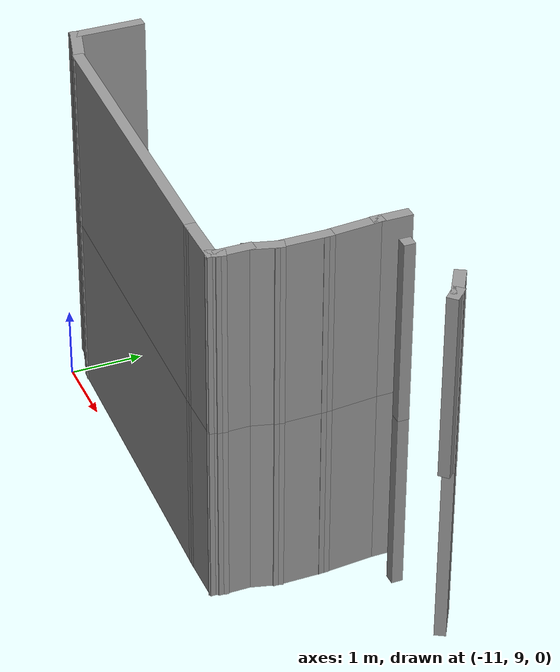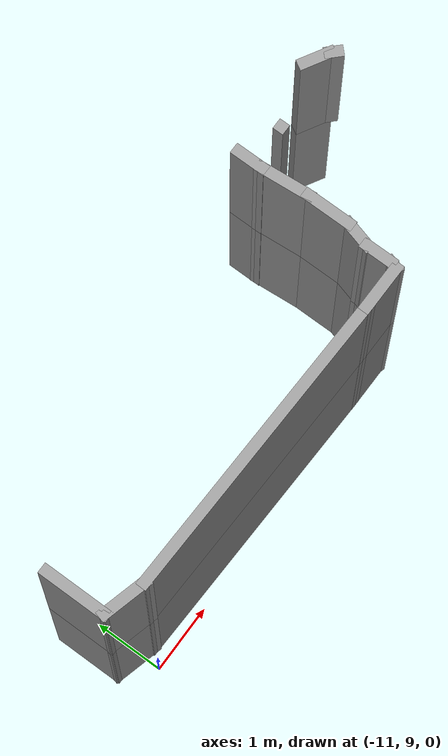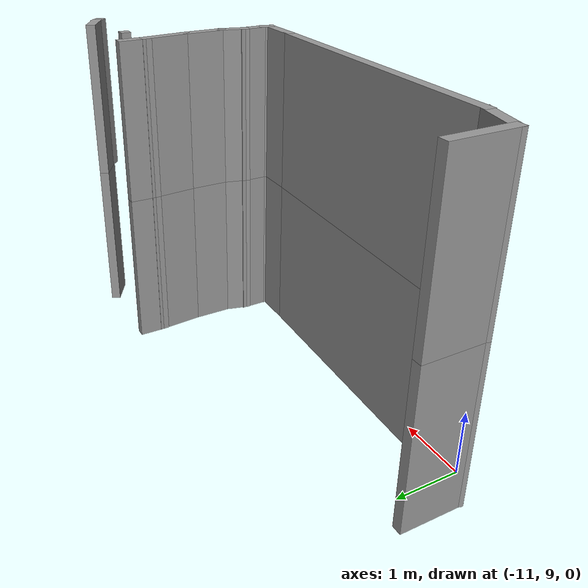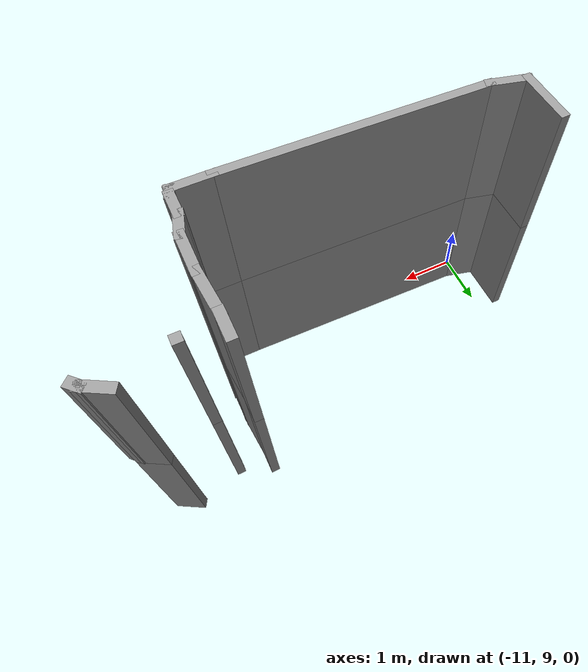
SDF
<sdf version="1.7">
 <model name="EnvDC01">
  <link name="Wall_100">
   <pose>-5.32892 11.2593 0 0 -0 0</pose>
   <visual name="Wall_100_Visual">
    <pose>0 0 1.25 0 -0 0</pose>
    <geometry><box><size>0.15 0.15 2.5</size></box></geometry>
    <material>
     <script><uri>file://media/materials/scripts/gazebo.material</uri><name>Gazebo/Grey</name></script>
     <ambient>1 1 1 1</ambient>
     <shader type="pixel"/>
    </material>
    <meta><layer>0</layer></meta>
   </visual>
   <collision name="Wall_100_Collision">
    <pose>0 0 1.25 0 -0 0</pose>
    <geometry><box><size>0.15 0.15 2.5</size></box></geometry>
    <surface>
     <friction>
      <ode><mu>1</mu><mu2>1</mu2><fdir1>0 0 0</fdir1><slip1>0</slip1><slip2>0</slip2></ode>
      <torsional>
       <coefficient>1</coefficient>
       <patch_radius>0</patch_radius>
       <surface_radius>0</surface_radius>
       <use_patch_radius>1</use_patch_radius>
       <ode><slip>0</slip></ode>
      </torsional>
     </friction>
     <bounce><restitution_coefficient>0</restitution_coefficient><threshold>1e+06</threshold></bounce>
     <contact>
      <collide_without_contact>0</collide_without_contact>
      <collide_without_contact_bitmask>1</collide_without_contact_bitmask>
      <collide_bitmask>1</collide_bitmask>
      <ode>
       <soft_cfm>0</soft_cfm>
       <soft_erp>0.2</soft_erp>
       <kp>1e+13</kp>
       <kd>1</kd>
       <max_vel>0.01</max_vel>
       <min_depth>0</min_depth>
      </ode>
      <bullet>
       <split_impulse>1</split_impulse>
       <split_impulse_penetration_threshold>-0.01</split_impulse_penetration_threshold>
       <soft_cfm>0</soft_cfm>
       <soft_erp>0.2</soft_erp>
       <kp>1e+13</kp>
       <kd>1</kd>
      </bullet>
     </contact>
    </surface>
   </collision>
  </link>
  <link name="Wall_102">
   <pose>-5.88941 11.3173 0 0 0 -1.5708</pose>
   <visual name="Wall_102_Visual">
    <pose>0 0 1.25 0 -0 0</pose>
    <geometry><box><size>0.5 0.15 2.5</size></box></geometry>
    <material>
     <script><uri>file://media/materials/scripts/gazebo.material</uri><name>Gazebo/Grey</name></script>
     <ambient>1 1 1 1</ambient>
     <shader type="pixel"/>
    </material>
    <meta><layer>0</layer></meta>
   </visual>
   <collision name="Wall_102_Collision">
    <pose>0 0 1.25 0 -0 0</pose>
    <geometry><box><size>0.5 0.15 2.5</size></box></geometry>
    <surface>
     <friction>
      <ode><mu>1</mu><mu2>1</mu2><fdir1>0 0 0</fdir1><slip1>0</slip1><slip2>0</slip2></ode>
      <torsional>
       <coefficient>1</coefficient>
       <patch_radius>0</patch_radius>
       <surface_radius>0</surface_radius>
       <use_patch_radius>1</use_patch_radius>
       <ode><slip>0</slip></ode>
      </torsional>
     </friction>
     <bounce><restitution_coefficient>0</restitution_coefficient><threshold>1e+06</threshold></bounce>
     <contact>
      <collide_without_contact>0</collide_without_contact>
      <collide_without_contact_bitmask>1</collide_without_contact_bitmask>
      <collide_bitmask>1</collide_bitmask>
      <ode>
       <soft_cfm>0</soft_cfm>
       <soft_erp>0.2</soft_erp>
       <kp>1e+13</kp>
       <kd>1</kd>
       <max_vel>0.01</max_vel>
       <min_depth>0</min_depth>
      </ode>
      <bullet>
       <split_impulse>1</split_impulse>
       <split_impulse_penetration_threshold>-0.01</split_impulse_penetration_threshold>
       <soft_cfm>0</soft_cfm>
       <soft_erp>0.2</soft_erp>
       <kp>1e+13</kp>
       <kd>1</kd>
      </bullet>
     </contact>
    </surface>
   </collision>
  </link>
  <link name="Wall_103">
   <pose>-5.86023 10.8116 0 0 0 -1.48755</pose>
   <visual name="Wall_103_Visual">
    <pose>0 0 1.25 0 -0 0</pose>
    <geometry><box><size>0.813803 0.15 2.5</size></box></geometry>
    <material>
     <script><uri>file://media/materials/scripts/gazebo.material</uri><name>Gazebo/Grey</name></script>
     <ambient>1 1 1 1</ambient>
     <shader type="pixel"/>
    </material>
    <meta><layer>0</layer></meta>
   </visual>
   <collision name="Wall_103_Collision">
    <pose>0 0 1.25 0 -0 0</pose>
    <geometry><box><size>0.813803 0.15 2.5</size></box></geometry>
    <surface>
     <friction>
      <ode><mu>1</mu><mu2>1</mu2><fdir1>0 0 0</fdir1><slip1>0</slip1><slip2>0</slip2></ode>
      <torsional>
       <coefficient>1</coefficient>
       <patch_radius>0</patch_radius>
       <surface_radius>0</surface_radius>
       <use_patch_radius>1</use_patch_radius>
       <ode><slip>0</slip></ode>
      </torsional>
     </friction>
     <bounce><restitution_coefficient>0</restitution_coefficient><threshold>1e+06</threshold></bounce>
     <contact>
      <collide_without_contact>0</collide_without_contact>
      <collide_without_contact_bitmask>1</collide_without_contact_bitmask>
      <collide_bitmask>1</collide_bitmask>
      <ode>
       <soft_cfm>0</soft_cfm>
       <soft_erp>0.2</soft_erp>
       <kp>1e+13</kp>
       <kd>1</kd>
       <max_vel>0.01</max_vel>
       <min_depth>0</min_depth>
      </ode>
      <bullet>
       <split_impulse>1</split_impulse>
       <split_impulse_penetration_threshold>-0.01</split_impulse_penetration_threshold>
       <soft_cfm>0</soft_cfm>
       <soft_erp>0.2</soft_erp>
       <kp>1e+13</kp>
       <kd>1</kd>
      </bullet>
     </contact>
    </surface>
   </collision>
  </link>
  <link name="Wall_104">
   <pose>-5.83264 10.1793 0 0 0 -1.5708</pose>
   <visual name="Wall_104_Visual">
    <pose>0 0 1.25 0 -0 0</pose>
    <geometry><box><size>0.75 0.15 2.5</size></box></geometry>
    <material>
     <script><uri>file://media/materials/scripts/gazebo.material</uri><name>Gazebo/Grey</name></script>
     <ambient>1 1 1 1</ambient>
     <shader type="pixel"/>
    </material>
    <meta><layer>0</layer></meta>
   </visual>
   <collision name="Wall_104_Collision">
    <pose>0 0 1.25 0 -0 0</pose>
    <geometry><box><size>0.75 0.15 2.5</size></box></geometry>
    <surface>
     <friction>
      <ode><mu>1</mu><mu2>1</mu2><fdir1>0 0 0</fdir1><slip1>0</slip1><slip2>0</slip2></ode>
      <torsional>
       <coefficient>1</coefficient>
       <patch_radius>0</patch_radius>
       <surface_radius>0</surface_radius>
       <use_patch_radius>1</use_patch_radius>
       <ode><slip>0</slip></ode>
      </torsional>
     </friction>
     <bounce><restitution_coefficient>0</restitution_coefficient><threshold>1e+06</threshold></bounce>
     <contact>
      <collide_without_contact>0</collide_without_contact>
      <collide_without_contact_bitmask>1</collide_without_contact_bitmask>
      <collide_bitmask>1</collide_bitmask>
      <ode>
       <soft_cfm>0</soft_cfm>
       <soft_erp>0.2</soft_erp>
       <kp>1e+13</kp>
       <kd>1</kd>
       <max_vel>0.01</max_vel>
       <min_depth>0</min_depth>
      </ode>
      <bullet>
       <split_impulse>1</split_impulse>
       <split_impulse_penetration_threshold>-0.01</split_impulse_penetration_threshold>
       <soft_cfm>0</soft_cfm>
       <soft_erp>0.2</soft_erp>
       <kp>1e+13</kp>
       <kd>1</kd>
      </bullet>
     </contact>
    </surface>
   </collision>
  </link>
  <link name="Wall_105">
   <pose>-5.87793 9.70942 0 0 0 -1.83143</pose>
   <visual name="Wall_105_Visual">
    <pose>0 0 1.25 0 -0 0</pose>
    <geometry><box><size>0.501524 0.15 2.5</size></box></geometry>
    <material>
     <script><uri>file://media/materials/scripts/gazebo.material</uri><name>Gazebo/Grey</name></script>
     <ambient>1 1 1 1</ambient>
     <shader type="pixel"/>
    </material>
    <meta><layer>0</layer></meta>
   </visual>
   <collision name="Wall_105_Collision">
    <pose>0 0 1.25 0 -0 0</pose>
    <geometry><box><size>0.501524 0.15 2.5</size></box></geometry>
    <surface>
     <friction>
      <ode><mu>1</mu><mu2>1</mu2><fdir1>0 0 0</fdir1><slip1>0</slip1><slip2>0</slip2></ode>
      <torsional>
       <coefficient>1</coefficient>
       <patch_radius>0</patch_radius>
       <surface_radius>0</surface_radius>
       <use_patch_radius>1</use_patch_radius>
       <ode><slip>0</slip></ode>
      </torsional>
     </friction>
     <bounce><restitution_coefficient>0</restitution_coefficient><threshold>1e+06</threshold></bounce>
     <contact>
      <collide_without_contact>0</collide_without_contact>
      <collide_without_contact_bitmask>1</collide_without_contact_bitmask>
      <collide_bitmask>1</collide_bitmask>
      <ode>
       <soft_cfm>0</soft_cfm>
       <soft_erp>0.2</soft_erp>
       <kp>1e+13</kp>
       <kd>1</kd>
       <max_vel>0.01</max_vel>
       <min_depth>0</min_depth>
      </ode>
      <bullet>
       <split_impulse>1</split_impulse>
       <split_impulse_penetration_threshold>-0.01</split_impulse_penetration_threshold>
       <soft_cfm>0</soft_cfm>
       <soft_erp>0.2</soft_erp>
       <kp>1e+13</kp>
       <kd>1</kd>
      </bullet>
     </contact>
    </surface>
   </collision>
  </link>
  <link name="Wall_106">
   <pose>-5.92322 9.3646 0 0 0 -1.5708</pose>
   <visual name="Wall_106_Visual">
    <pose>0 0 1.25 0 -0 0</pose>
    <geometry><box><size>0.5 0.15 2.5</size></box></geometry>
    <material>
     <script><uri>file://media/materials/scripts/gazebo.material</uri><name>Gazebo/Grey</name></script>
     <ambient>1 1 1 1</ambient>
     <shader type="pixel"/>
    </material>
    <meta><layer>0</layer></meta>
   </visual>
   <collision name="Wall_106_Collision">
    <pose>0 0 1.25 0 -0 0</pose>
    <geometry><box><size>0.5 0.15 2.5</size></box></geometry>
    <surface>
     <friction>
      <ode><mu>1</mu><mu2>1</mu2><fdir1>0 0 0</fdir1><slip1>0</slip1><slip2>0</slip2></ode>
      <torsional>
       <coefficient>1</coefficient>
       <patch_radius>0</patch_radius>
       <surface_radius>0</surface_radius>
       <use_patch_radius>1</use_patch_radius>
       <ode><slip>0</slip></ode>
      </torsional>
     </friction>
     <bounce><restitution_coefficient>0</restitution_coefficient><threshold>1e+06</threshold></bounce>
     <contact>
      <collide_without_contact>0</collide_without_contact>
      <collide_without_contact_bitmask>1</collide_without_contact_bitmask>
      <collide_bitmask>1</collide_bitmask>
      <ode>
       <soft_cfm>0</soft_cfm>
       <soft_erp>0.2</soft_erp>
       <kp>1e+13</kp>
       <kd>1</kd>
       <max_vel>0.01</max_vel>
       <min_depth>0</min_depth>
      </ode>
      <bullet>
       <split_impulse>1</split_impulse>
       <split_impulse_penetration_threshold>-0.01</split_impulse_penetration_threshold>
       <soft_cfm>0</soft_cfm>
       <soft_erp>0.2</soft_erp>
       <kp>1e+13</kp>
       <kd>1</kd>
      </bullet>
     </contact>
    </surface>
   </collision>
  </link>
  <link name="Wall_107">
   <pose>-5.93616 9.1413 0 0 0 -1.8326</pose>
   <visual name="Wall_107_Visual">
    <pose>0 0 1.25 0 -0 0</pose>
    <geometry><box><size>0.25 0.15 2.5</size></box></geometry>
    <material>
     <script><uri>file://media/materials/scripts/gazebo.material</uri><name>Gazebo/Grey</name></script>
     <ambient>1 1 1 1</ambient>
     <shader type="pixel"/>
    </material>
    <meta><layer>0</layer></meta>
   </visual>
   <collision name="Wall_107_Collision">
    <pose>0 0 1.25 0 -0 0</pose>
    <geometry><box><size>0.25 0.15 2.5</size></box></geometry>
    <surface>
     <friction>
      <ode><mu>1</mu><mu2>1</mu2><fdir1>0 0 0</fdir1><slip1>0</slip1><slip2>0</slip2></ode>
      <torsional>
       <coefficient>1</coefficient>
       <patch_radius>0</patch_radius>
       <surface_radius>0</surface_radius>
       <use_patch_radius>1</use_patch_radius>
       <ode><slip>0</slip></ode>
      </torsional>
     </friction>
     <bounce><restitution_coefficient>0</restitution_coefficient><threshold>1e+06</threshold></bounce>
     <contact>
      <collide_without_contact>0</collide_without_contact>
      <collide_without_contact_bitmask>1</collide_without_contact_bitmask>
      <collide_bitmask>1</collide_bitmask>
      <ode>
       <soft_cfm>0</soft_cfm>
       <soft_erp>0.2</soft_erp>
       <kp>1e+13</kp>
       <kd>1</kd>
       <max_vel>0.01</max_vel>
       <min_depth>0</min_depth>
      </ode>
      <bullet>
       <split_impulse>1</split_impulse>
       <split_impulse_penetration_threshold>-0.01</split_impulse_penetration_threshold>
       <soft_cfm>0</soft_cfm>
       <soft_erp>0.2</soft_erp>
       <kp>1e+13</kp>
       <kd>1</kd>
      </bullet>
     </contact>
    </surface>
   </collision>
  </link>
  <link name="Wall_108">
   <pose>-6.24911 9.09509 0 0 -0 3.13464</pose>
   <visual name="Wall_108_Visual">
    <pose>0 0 1.25 0 -0 0</pose>
    <geometry><box><size>0.75 0.15 2.5</size></box></geometry>
    <material>
     <script><uri>file://media/materials/scripts/gazebo.material</uri><name>Gazebo/Grey</name></script>
     <ambient>1 1 1 1</ambient>
     <shader type="pixel"/>
    </material>
    <meta><layer>0</layer></meta>
   </visual>
   <collision name="Wall_108_Collision">
    <pose>0 0 1.25 0 -0 0</pose>
    <geometry><box><size>0.75 0.15 2.5</size></box></geometry>
    <surface>
     <friction>
      <ode><mu>1</mu><mu2>1</mu2><fdir1>0 0 0</fdir1><slip1>0</slip1><slip2>0</slip2></ode>
      <torsional>
       <coefficient>1</coefficient>
       <patch_radius>0</patch_radius>
       <surface_radius>0</surface_radius>
       <use_patch_radius>1</use_patch_radius>
       <ode><slip>0</slip></ode>
      </torsional>
     </friction>
     <bounce><restitution_coefficient>0</restitution_coefficient><threshold>1e+06</threshold></bounce>
     <contact>
      <collide_without_contact>0</collide_without_contact>
      <collide_without_contact_bitmask>1</collide_without_contact_bitmask>
      <collide_bitmask>1</collide_bitmask>
      <ode>
       <soft_cfm>0</soft_cfm>
       <soft_erp>0.2</soft_erp>
       <kp>1e+13</kp>
       <kd>1</kd>
       <max_vel>0.01</max_vel>
       <min_depth>0</min_depth>
      </ode>
      <bullet>
       <split_impulse>1</split_impulse>
       <split_impulse_penetration_threshold>-0.01</split_impulse_penetration_threshold>
       <soft_cfm>0</soft_cfm>
       <soft_erp>0.2</soft_erp>
       <kp>1e+13</kp>
       <kd>1</kd>
      </bullet>
     </contact>
    </surface>
   </collision>
  </link>
  <link name="Wall_111">
   <pose>-8.68398 9.16284 0 0 -0 3.11085</pose>
   <visual name="Wall_111_Visual">
    <pose>0 0 1.25 0 -0 0</pose>
    <geometry><box><size>4.42177 0.15 2.5</size></box></geometry>
    <material>
     <script><uri>file://media/materials/scripts/gazebo.material</uri><name>Gazebo/Grey</name></script>
     <ambient>1 1 1 1</ambient>
     <shader type="pixel"/>
    </material>
    <meta><layer>0</layer></meta>
   </visual>
   <collision name="Wall_111_Collision">
    <pose>0 0 1.25 0 -0 0</pose>
    <geometry><box><size>4.42177 0.15 2.5</size></box></geometry>
    <surface>
     <friction>
      <ode><mu>1</mu><mu2>1</mu2><fdir1>0 0 0</fdir1><slip1>0</slip1><slip2>0</slip2></ode>
      <torsional>
       <coefficient>1</coefficient>
       <patch_radius>0</patch_radius>
       <surface_radius>0</surface_radius>
       <use_patch_radius>1</use_patch_radius>
       <ode><slip>0</slip></ode>
      </torsional>
     </friction>
     <bounce><restitution_coefficient>0</restitution_coefficient><threshold>1e+06</threshold></bounce>
     <contact>
      <collide_without_contact>0</collide_without_contact>
      <collide_without_contact_bitmask>1</collide_without_contact_bitmask>
      <collide_bitmask>1</collide_bitmask>
      <ode>
       <soft_cfm>0</soft_cfm>
       <soft_erp>0.2</soft_erp>
       <kp>1e+13</kp>
       <kd>1</kd>
       <max_vel>0.01</max_vel>
       <min_depth>0</min_depth>
      </ode>
      <bullet>
       <split_impulse>1</split_impulse>
       <split_impulse_penetration_threshold>-0.01</split_impulse_penetration_threshold>
       <soft_cfm>0</soft_cfm>
       <soft_erp>0.2</soft_erp>
       <kp>1e+13</kp>
       <kd>1</kd>
      </bullet>
     </contact>
    </surface>
   </collision>
  </link>
  <link name="Wall_112">
   <pose>-11.1086 9.30614 0 0 -0 2.87979</pose>
   <visual name="Wall_112_Visual">
    <pose>0 0 1.25 0 -0 0</pose>
    <geometry><box><size>0.75 0.15 2.5</size></box></geometry>
    <material>
     <script><uri>file://media/materials/scripts/gazebo.material</uri><name>Gazebo/Grey</name></script>
     <ambient>1 1 1 1</ambient>
     <shader type="pixel"/>
    </material>
    <meta><layer>0</layer></meta>
   </visual>
   <collision name="Wall_112_Collision">
    <pose>0 0 1.25 0 -0 0</pose>
    <geometry><box><size>0.75 0.15 2.5</size></box></geometry>
    <surface>
     <friction>
      <ode><mu>1</mu><mu2>1</mu2><fdir1>0 0 0</fdir1><slip1>0</slip1><slip2>0</slip2></ode>
      <torsional>
       <coefficient>1</coefficient>
       <patch_radius>0</patch_radius>
       <surface_radius>0</surface_radius>
       <use_patch_radius>1</use_patch_radius>
       <ode><slip>0</slip></ode>
      </torsional>
     </friction>
     <bounce><restitution_coefficient>0</restitution_coefficient><threshold>1e+06</threshold></bounce>
     <contact>
      <collide_without_contact>0</collide_without_contact>
      <collide_without_contact_bitmask>1</collide_without_contact_bitmask>
      <collide_bitmask>1</collide_bitmask>
      <ode>
       <soft_cfm>0</soft_cfm>
       <soft_erp>0.2</soft_erp>
       <kp>1e+13</kp>
       <kd>1</kd>
       <max_vel>0.01</max_vel>
       <min_depth>0</min_depth>
      </ode>
      <bullet>
       <split_impulse>1</split_impulse>
       <split_impulse_penetration_threshold>-0.01</split_impulse_penetration_threshold>
       <soft_cfm>0</soft_cfm>
       <soft_erp>0.2</soft_erp>
       <kp>1e+13</kp>
       <kd>1</kd>
      </bullet>
     </contact>
    </surface>
   </collision>
  </link>
  <link name="Wall_116">
   <pose>-11.3984 9.80879 0 0 0 -1.5708</pose>
   <visual name="Wall_116_Visual">
    <pose>0 0 1.25 0 -0 0</pose>
    <geometry><box><size>1 0.15 2.5</size></box></geometry>
    <material>
     <script><uri>file://media/materials/scripts/gazebo.material</uri><name>Gazebo/Grey</name></script>
     <ambient>1 1 1 1</ambient>
     <shader type="pixel"/>
    </material>
    <meta><layer>0</layer></meta>
   </visual>
   <collision name="Wall_116_Collision">
    <pose>0 0 1.25 0 -0 0</pose>
    <geometry><box><size>1 0.15 2.5</size></box></geometry>
    <surface>
     <friction>
      <ode><mu>1</mu><mu2>1</mu2><fdir1>0 0 0</fdir1><slip1>0</slip1><slip2>0</slip2></ode>
      <torsional>
       <coefficient>1</coefficient>
       <patch_radius>0</patch_radius>
       <surface_radius>0</surface_radius>
       <use_patch_radius>1</use_patch_radius>
       <ode><slip>0</slip></ode>
      </torsional>
     </friction>
     <bounce><restitution_coefficient>0</restitution_coefficient><threshold>1e+06</threshold></bounce>
     <contact>
      <collide_without_contact>0</collide_without_contact>
      <collide_without_contact_bitmask>1</collide_without_contact_bitmask>
      <collide_bitmask>1</collide_bitmask>
      <ode>
       <soft_cfm>0</soft_cfm>
       <soft_erp>0.2</soft_erp>
       <kp>1e+13</kp>
       <kd>1</kd>
       <max_vel>0.01</max_vel>
       <min_depth>0</min_depth>
      </ode>
      <bullet>
       <split_impulse>1</split_impulse>
       <split_impulse_penetration_threshold>-0.01</split_impulse_penetration_threshold>
       <soft_cfm>0</soft_cfm>
       <soft_erp>0.2</soft_erp>
       <kp>1e+13</kp>
       <kd>1</kd>
      </bullet>
     </contact>
    </surface>
   </collision>
  </link>
  <link name="Wall_305">
   <pose>-4.16829 11.3139 2.5 0 -0 2.35619</pose>
   <visual name="Wall_305_Visual">
    <pose>0 0 1.25 0 -0 0</pose>
    <geometry><box><size>0.25 0.15 2.5</size></box></geometry>
    <material>
     <script><uri>file://media/materials/scripts/gazebo.material</uri><name>Gazebo/Grey</name></script>
     <ambient>1 1 1 1</ambient>
     <shader type="pixel"/>
    </material>
    <meta><layer>1</layer></meta>
   </visual>
   <collision name="Wall_305_Collision">
    <pose>0 0 1.25 0 -0 0</pose>
    <geometry><box><size>0.25 0.15 2.5</size></box></geometry>
    <surface>
     <friction>
      <ode><mu>1</mu><mu2>1</mu2><fdir1>0 0 0</fdir1><slip1>0</slip1><slip2>0</slip2></ode>
      <torsional>
       <coefficient>1</coefficient>
       <patch_radius>0</patch_radius>
       <surface_radius>0</surface_radius>
       <use_patch_radius>1</use_patch_radius>
       <ode><slip>0</slip></ode>
      </torsional>
     </friction>
     <bounce><restitution_coefficient>0</restitution_coefficient><threshold>1e+06</threshold></bounce>
     <contact>
      <collide_without_contact>0</collide_without_contact>
      <collide_without_contact_bitmask>1</collide_without_contact_bitmask>
      <collide_bitmask>1</collide_bitmask>
      <ode>
       <soft_cfm>0</soft_cfm>
       <soft_erp>0.2</soft_erp>
       <kp>1e+13</kp>
       <kd>1</kd>
       <max_vel>0.01</max_vel>
       <min_depth>0</min_depth>
      </ode>
      <bullet>
       <split_impulse>1</split_impulse>
       <split_impulse_penetration_threshold>-0.01</split_impulse_penetration_threshold>
       <soft_cfm>0</soft_cfm>
       <soft_erp>0.2</soft_erp>
       <kp>1e+13</kp>
       <kd>1</kd>
      </bullet>
     </contact>
    </surface>
   </collision>
  </link>
  <link name="Wall_306">
   <pose>-4.3552 11.4368 2.5 0 -0 2.61799</pose>
   <visual name="Wall_306_Visual">
    <pose>0 0 1.25 0 -0 0</pose>
    <geometry><box><size>0.5 0.15 2.5</size></box></geometry>
    <material>
     <script><uri>file://media/materials/scripts/gazebo.material</uri><name>Gazebo/Grey</name></script>
     <ambient>1 1 1 1</ambient>
     <shader type="pixel"/>
    </material>
    <meta><layer>1</layer></meta>
   </visual>
   <collision name="Wall_306_Collision">
    <pose>0 0 1.25 0 -0 0</pose>
    <geometry><box><size>0.5 0.15 2.5</size></box></geometry>
    <surface>
     <friction>
      <ode><mu>1</mu><mu2>1</mu2><fdir1>0 0 0</fdir1><slip1>0</slip1><slip2>0</slip2></ode>
      <torsional>
       <coefficient>1</coefficient>
       <patch_radius>0</patch_radius>
       <surface_radius>0</surface_radius>
       <use_patch_radius>1</use_patch_radius>
       <ode><slip>0</slip></ode>
      </torsional>
     </friction>
     <bounce><restitution_coefficient>0</restitution_coefficient><threshold>1e+06</threshold></bounce>
     <contact>
      <collide_without_contact>0</collide_without_contact>
      <collide_without_contact_bitmask>1</collide_without_contact_bitmask>
      <collide_bitmask>1</collide_bitmask>
      <ode>
       <soft_cfm>0</soft_cfm>
       <soft_erp>0.2</soft_erp>
       <kp>1e+13</kp>
       <kd>1</kd>
       <max_vel>0.01</max_vel>
       <min_depth>0</min_depth>
      </ode>
      <bullet>
       <split_impulse>1</split_impulse>
       <split_impulse_penetration_threshold>-0.01</split_impulse_penetration_threshold>
       <soft_cfm>0</soft_cfm>
       <soft_erp>0.2</soft_erp>
       <kp>1e+13</kp>
       <kd>1</kd>
      </bullet>
     </contact>
    </surface>
   </collision>
  </link>
  <link name="Wall_308">
   <pose>-5.32892 11.2593 2.5 0 -0 0</pose>
   <visual name="Wall_308_Visual">
    <pose>0 0 1.25 0 -0 0</pose>
    <geometry><box><size>0.15 0.15 2.5</size></box></geometry>
    <material>
     <script><uri>file://media/materials/scripts/gazebo.material</uri><name>Gazebo/Grey</name></script>
     <ambient>1 1 1 1</ambient>
     <shader type="pixel"/>
    </material>
    <meta><layer>1</layer></meta>
   </visual>
   <collision name="Wall_308_Collision">
    <pose>0 0 1.25 0 -0 0</pose>
    <geometry><box><size>0.15 0.15 2.5</size></box></geometry>
    <surface>
     <friction>
      <ode><mu>1</mu><mu2>1</mu2><fdir1>0 0 0</fdir1><slip1>0</slip1><slip2>0</slip2></ode>
      <torsional>
       <coefficient>1</coefficient>
       <patch_radius>0</patch_radius>
       <surface_radius>0</surface_radius>
       <use_patch_radius>1</use_patch_radius>
       <ode><slip>0</slip></ode>
      </torsional>
     </friction>
     <bounce><restitution_coefficient>0</restitution_coefficient><threshold>1e+06</threshold></bounce>
     <contact>
      <collide_without_contact>0</collide_without_contact>
      <collide_without_contact_bitmask>1</collide_without_contact_bitmask>
      <collide_bitmask>1</collide_bitmask>
      <ode>
       <soft_cfm>0</soft_cfm>
       <soft_erp>0.2</soft_erp>
       <kp>1e+13</kp>
       <kd>1</kd>
       <max_vel>0.01</max_vel>
       <min_depth>0</min_depth>
      </ode>
      <bullet>
       <split_impulse>1</split_impulse>
       <split_impulse_penetration_threshold>-0.01</split_impulse_penetration_threshold>
       <soft_cfm>0</soft_cfm>
       <soft_erp>0.2</soft_erp>
       <kp>1e+13</kp>
       <kd>1</kd>
      </bullet>
     </contact>
    </surface>
   </collision>
  </link>
  <link name="Wall_309">
   <pose>-5.88941 11.3173 2.5 0 0 -1.5708</pose>
   <visual name="Wall_309_Visual">
    <pose>0 0 1.25 0 -0 0</pose>
    <geometry><box><size>0.5 0.15 2.5</size></box></geometry>
    <material>
     <script><uri>file://media/materials/scripts/gazebo.material</uri><name>Gazebo/Grey</name></script>
     <ambient>1 1 1 1</ambient>
     <shader type="pixel"/>
    </material>
    <meta><layer>1</layer></meta>
   </visual>
   <collision name="Wall_309_Collision">
    <pose>0 0 1.25 0 -0 0</pose>
    <geometry><box><size>0.5 0.15 2.5</size></box></geometry>
    <surface>
     <friction>
      <ode><mu>1</mu><mu2>1</mu2><fdir1>0 0 0</fdir1><slip1>0</slip1><slip2>0</slip2></ode>
      <torsional>
       <coefficient>1</coefficient>
       <patch_radius>0</patch_radius>
       <surface_radius>0</surface_radius>
       <use_patch_radius>1</use_patch_radius>
       <ode><slip>0</slip></ode>
      </torsional>
     </friction>
     <bounce><restitution_coefficient>0</restitution_coefficient><threshold>1e+06</threshold></bounce>
     <contact>
      <collide_without_contact>0</collide_without_contact>
      <collide_without_contact_bitmask>1</collide_without_contact_bitmask>
      <collide_bitmask>1</collide_bitmask>
      <ode>
       <soft_cfm>0</soft_cfm>
       <soft_erp>0.2</soft_erp>
       <kp>1e+13</kp>
       <kd>1</kd>
       <max_vel>0.01</max_vel>
       <min_depth>0</min_depth>
      </ode>
      <bullet>
       <split_impulse>1</split_impulse>
       <split_impulse_penetration_threshold>-0.01</split_impulse_penetration_threshold>
       <soft_cfm>0</soft_cfm>
       <soft_erp>0.2</soft_erp>
       <kp>1e+13</kp>
       <kd>1</kd>
      </bullet>
     </contact>
    </surface>
   </collision>
  </link>
  <link name="Wall_310">
   <pose>-5.86023 10.8116 2.5 0 0 -1.48755</pose>
   <visual name="Wall_310_Visual">
    <pose>0 0 1.25 0 -0 0</pose>
    <geometry><box><size>0.813803 0.15 2.5</size></box></geometry>
    <material>
     <script><uri>file://media/materials/scripts/gazebo.material</uri><name>Gazebo/Grey</name></script>
     <ambient>1 1 1 1</ambient>
     <shader type="pixel"/>
    </material>
    <meta><layer>1</layer></meta>
   </visual>
   <collision name="Wall_310_Collision">
    <pose>0 0 1.25 0 -0 0</pose>
    <geometry><box><size>0.813803 0.15 2.5</size></box></geometry>
    <surface>
     <friction>
      <ode><mu>1</mu><mu2>1</mu2><fdir1>0 0 0</fdir1><slip1>0</slip1><slip2>0</slip2></ode>
      <torsional>
       <coefficient>1</coefficient>
       <patch_radius>0</patch_radius>
       <surface_radius>0</surface_radius>
       <use_patch_radius>1</use_patch_radius>
       <ode><slip>0</slip></ode>
      </torsional>
     </friction>
     <bounce><restitution_coefficient>0</restitution_coefficient><threshold>1e+06</threshold></bounce>
     <contact>
      <collide_without_contact>0</collide_without_contact>
      <collide_without_contact_bitmask>1</collide_without_contact_bitmask>
      <collide_bitmask>1</collide_bitmask>
      <ode>
       <soft_cfm>0</soft_cfm>
       <soft_erp>0.2</soft_erp>
       <kp>1e+13</kp>
       <kd>1</kd>
       <max_vel>0.01</max_vel>
       <min_depth>0</min_depth>
      </ode>
      <bullet>
       <split_impulse>1</split_impulse>
       <split_impulse_penetration_threshold>-0.01</split_impulse_penetration_threshold>
       <soft_cfm>0</soft_cfm>
       <soft_erp>0.2</soft_erp>
       <kp>1e+13</kp>
       <kd>1</kd>
      </bullet>
     </contact>
    </surface>
   </collision>
  </link>
  <link name="Wall_311">
   <pose>-5.83264 10.1793 2.5 0 0 -1.5708</pose>
   <visual name="Wall_311_Visual">
    <pose>0 0 1.25 0 -0 0</pose>
    <geometry><box><size>0.75 0.15 2.5</size></box></geometry>
    <material>
     <script><uri>file://media/materials/scripts/gazebo.material</uri><name>Gazebo/Grey</name></script>
     <ambient>1 1 1 1</ambient>
     <shader type="pixel"/>
    </material>
    <meta><layer>1</layer></meta>
   </visual>
   <collision name="Wall_311_Collision">
    <pose>0 0 1.25 0 -0 0</pose>
    <geometry><box><size>0.75 0.15 2.5</size></box></geometry>
    <surface>
     <friction>
      <ode><mu>1</mu><mu2>1</mu2><fdir1>0 0 0</fdir1><slip1>0</slip1><slip2>0</slip2></ode>
      <torsional>
       <coefficient>1</coefficient>
       <patch_radius>0</patch_radius>
       <surface_radius>0</surface_radius>
       <use_patch_radius>1</use_patch_radius>
       <ode><slip>0</slip></ode>
      </torsional>
     </friction>
     <bounce><restitution_coefficient>0</restitution_coefficient><threshold>1e+06</threshold></bounce>
     <contact>
      <collide_without_contact>0</collide_without_contact>
      <collide_without_contact_bitmask>1</collide_without_contact_bitmask>
      <collide_bitmask>1</collide_bitmask>
      <ode>
       <soft_cfm>0</soft_cfm>
       <soft_erp>0.2</soft_erp>
       <kp>1e+13</kp>
       <kd>1</kd>
       <max_vel>0.01</max_vel>
       <min_depth>0</min_depth>
      </ode>
      <bullet>
       <split_impulse>1</split_impulse>
       <split_impulse_penetration_threshold>-0.01</split_impulse_penetration_threshold>
       <soft_cfm>0</soft_cfm>
       <soft_erp>0.2</soft_erp>
       <kp>1e+13</kp>
       <kd>1</kd>
      </bullet>
     </contact>
    </surface>
   </collision>
  </link>
  <link name="Wall_312">
   <pose>-5.87793 9.70942 2.5 0 0 -1.83143</pose>
   <visual name="Wall_312_Visual">
    <pose>0 0 1.25 0 -0 0</pose>
    <geometry><box><size>0.501524 0.15 2.5</size></box></geometry>
    <material>
     <script><uri>file://media/materials/scripts/gazebo.material</uri><name>Gazebo/Grey</name></script>
     <ambient>1 1 1 1</ambient>
     <shader type="pixel"/>
    </material>
    <meta><layer>1</layer></meta>
   </visual>
   <collision name="Wall_312_Collision">
    <pose>0 0 1.25 0 -0 0</pose>
    <geometry><box><size>0.501524 0.15 2.5</size></box></geometry>
    <surface>
     <friction>
      <ode><mu>1</mu><mu2>1</mu2><fdir1>0 0 0</fdir1><slip1>0</slip1><slip2>0</slip2></ode>
      <torsional>
       <coefficient>1</coefficient>
       <patch_radius>0</patch_radius>
       <surface_radius>0</surface_radius>
       <use_patch_radius>1</use_patch_radius>
       <ode><slip>0</slip></ode>
      </torsional>
     </friction>
     <bounce><restitution_coefficient>0</restitution_coefficient><threshold>1e+06</threshold></bounce>
     <contact>
      <collide_without_contact>0</collide_without_contact>
      <collide_without_contact_bitmask>1</collide_without_contact_bitmask>
      <collide_bitmask>1</collide_bitmask>
      <ode>
       <soft_cfm>0</soft_cfm>
       <soft_erp>0.2</soft_erp>
       <kp>1e+13</kp>
       <kd>1</kd>
       <max_vel>0.01</max_vel>
       <min_depth>0</min_depth>
      </ode>
      <bullet>
       <split_impulse>1</split_impulse>
       <split_impulse_penetration_threshold>-0.01</split_impulse_penetration_threshold>
       <soft_cfm>0</soft_cfm>
       <soft_erp>0.2</soft_erp>
       <kp>1e+13</kp>
       <kd>1</kd>
      </bullet>
     </contact>
    </surface>
   </collision>
  </link>
  <link name="Wall_313">
   <pose>-5.92322 9.3646 2.5 0 0 -1.5708</pose>
   <visual name="Wall_313_Visual">
    <pose>0 0 1.25 0 -0 0</pose>
    <geometry><box><size>0.5 0.15 2.5</size></box></geometry>
    <material>
     <script><uri>file://media/materials/scripts/gazebo.material</uri><name>Gazebo/Grey</name></script>
     <ambient>1 1 1 1</ambient>
     <shader type="pixel"/>
    </material>
    <meta><layer>1</layer></meta>
   </visual>
   <collision name="Wall_313_Collision">
    <pose>0 0 1.25 0 -0 0</pose>
    <geometry><box><size>0.5 0.15 2.5</size></box></geometry>
    <surface>
     <friction>
      <ode><mu>1</mu><mu2>1</mu2><fdir1>0 0 0</fdir1><slip1>0</slip1><slip2>0</slip2></ode>
      <torsional>
       <coefficient>1</coefficient>
       <patch_radius>0</patch_radius>
       <surface_radius>0</surface_radius>
       <use_patch_radius>1</use_patch_radius>
       <ode><slip>0</slip></ode>
      </torsional>
     </friction>
     <bounce><restitution_coefficient>0</restitution_coefficient><threshold>1e+06</threshold></bounce>
     <contact>
      <collide_without_contact>0</collide_without_contact>
      <collide_without_contact_bitmask>1</collide_without_contact_bitmask>
      <collide_bitmask>1</collide_bitmask>
      <ode>
       <soft_cfm>0</soft_cfm>
       <soft_erp>0.2</soft_erp>
       <kp>1e+13</kp>
       <kd>1</kd>
       <max_vel>0.01</max_vel>
       <min_depth>0</min_depth>
      </ode>
      <bullet>
       <split_impulse>1</split_impulse>
       <split_impulse_penetration_threshold>-0.01</split_impulse_penetration_threshold>
       <soft_cfm>0</soft_cfm>
       <soft_erp>0.2</soft_erp>
       <kp>1e+13</kp>
       <kd>1</kd>
      </bullet>
     </contact>
    </surface>
   </collision>
  </link>
  <link name="Wall_314">
   <pose>-5.93616 9.1413 2.5 0 0 -1.8326</pose>
   <visual name="Wall_314_Visual">
    <pose>0 0 1.25 0 -0 0</pose>
    <geometry><box><size>0.25 0.15 2.5</size></box></geometry>
    <material>
     <script><uri>file://media/materials/scripts/gazebo.material</uri><name>Gazebo/Grey</name></script>
     <ambient>1 1 1 1</ambient>
     <shader type="pixel"/>
    </material>
    <meta><layer>1</layer></meta>
   </visual>
   <collision name="Wall_314_Collision">
    <pose>0 0 1.25 0 -0 0</pose>
    <geometry><box><size>0.25 0.15 2.5</size></box></geometry>
    <surface>
     <friction>
      <ode><mu>1</mu><mu2>1</mu2><fdir1>0 0 0</fdir1><slip1>0</slip1><slip2>0</slip2></ode>
      <torsional>
       <coefficient>1</coefficient>
       <patch_radius>0</patch_radius>
       <surface_radius>0</surface_radius>
       <use_patch_radius>1</use_patch_radius>
       <ode><slip>0</slip></ode>
      </torsional>
     </friction>
     <bounce><restitution_coefficient>0</restitution_coefficient><threshold>1e+06</threshold></bounce>
     <contact>
      <collide_without_contact>0</collide_without_contact>
      <collide_without_contact_bitmask>1</collide_without_contact_bitmask>
      <collide_bitmask>1</collide_bitmask>
      <ode>
       <soft_cfm>0</soft_cfm>
       <soft_erp>0.2</soft_erp>
       <kp>1e+13</kp>
       <kd>1</kd>
       <max_vel>0.01</max_vel>
       <min_depth>0</min_depth>
      </ode>
      <bullet>
       <split_impulse>1</split_impulse>
       <split_impulse_penetration_threshold>-0.01</split_impulse_penetration_threshold>
       <soft_cfm>0</soft_cfm>
       <soft_erp>0.2</soft_erp>
       <kp>1e+13</kp>
       <kd>1</kd>
      </bullet>
     </contact>
    </surface>
   </collision>
  </link>
  <link name="Wall_315">
   <pose>-6.24911 9.09509 2.5 0 -0 3.13464</pose>
   <visual name="Wall_315_Visual">
    <pose>0 0 1.25 0 -0 0</pose>
    <geometry><box><size>0.750014 0.15 2.5</size></box></geometry>
    <material>
     <script><uri>file://media/materials/scripts/gazebo.material</uri><name>Gazebo/Grey</name></script>
     <ambient>1 1 1 1</ambient>
     <shader type="pixel"/>
    </material>
    <meta><layer>1</layer></meta>
   </visual>
   <collision name="Wall_315_Collision">
    <pose>0 0 1.25 0 -0 0</pose>
    <geometry><box><size>0.750014 0.15 2.5</size></box></geometry>
    <surface>
     <friction>
      <ode><mu>1</mu><mu2>1</mu2><fdir1>0 0 0</fdir1><slip1>0</slip1><slip2>0</slip2></ode>
      <torsional>
       <coefficient>1</coefficient>
       <patch_radius>0</patch_radius>
       <surface_radius>0</surface_radius>
       <use_patch_radius>1</use_patch_radius>
       <ode><slip>0</slip></ode>
      </torsional>
     </friction>
     <bounce><restitution_coefficient>0</restitution_coefficient><threshold>1e+06</threshold></bounce>
     <contact>
      <collide_without_contact>0</collide_without_contact>
      <collide_without_contact_bitmask>1</collide_without_contact_bitmask>
      <collide_bitmask>1</collide_bitmask>
      <ode>
       <soft_cfm>0</soft_cfm>
       <soft_erp>0.2</soft_erp>
       <kp>1e+13</kp>
       <kd>1</kd>
       <max_vel>0.01</max_vel>
       <min_depth>0</min_depth>
      </ode>
      <bullet>
       <split_impulse>1</split_impulse>
       <split_impulse_penetration_threshold>-0.01</split_impulse_penetration_threshold>
       <soft_cfm>0</soft_cfm>
       <soft_erp>0.2</soft_erp>
       <kp>1e+13</kp>
       <kd>1</kd>
      </bullet>
     </contact>
    </surface>
   </collision>
  </link>
  <link name="Wall_316">
   <pose>-8.68398 9.16284 2.5 0 -0 3.11085</pose>
   <visual name="Wall_316_Visual">
    <pose>0 0 1.25 0 -0 0</pose>
    <geometry><box><size>4.42177 0.15 2.5</size></box></geometry>
    <material>
     <script><uri>file://media/materials/scripts/gazebo.material</uri><name>Gazebo/Grey</name></script>
     <ambient>1 1 1 1</ambient>
     <shader type="pixel"/>
    </material>
    <meta><layer>1</layer></meta>
   </visual>
   <collision name="Wall_316_Collision">
    <pose>0 0 1.25 0 -0 0</pose>
    <geometry><box><size>4.42177 0.15 2.5</size></box></geometry>
    <surface>
     <friction>
      <ode><mu>1</mu><mu2>1</mu2><fdir1>0 0 0</fdir1><slip1>0</slip1><slip2>0</slip2></ode>
      <torsional>
       <coefficient>1</coefficient>
       <patch_radius>0</patch_radius>
       <surface_radius>0</surface_radius>
       <use_patch_radius>1</use_patch_radius>
       <ode><slip>0</slip></ode>
      </torsional>
     </friction>
     <bounce><restitution_coefficient>0</restitution_coefficient><threshold>1e+06</threshold></bounce>
     <contact>
      <collide_without_contact>0</collide_without_contact>
      <collide_without_contact_bitmask>1</collide_without_contact_bitmask>
      <collide_bitmask>1</collide_bitmask>
      <ode>
       <soft_cfm>0</soft_cfm>
       <soft_erp>0.2</soft_erp>
       <kp>1e+13</kp>
       <kd>1</kd>
       <max_vel>0.01</max_vel>
       <min_depth>0</min_depth>
      </ode>
      <bullet>
       <split_impulse>1</split_impulse>
       <split_impulse_penetration_threshold>-0.01</split_impulse_penetration_threshold>
       <soft_cfm>0</soft_cfm>
       <soft_erp>0.2</soft_erp>
       <kp>1e+13</kp>
       <kd>1</kd>
      </bullet>
     </contact>
    </surface>
   </collision>
  </link>
  <link name="Wall_317">
   <pose>-11.1086 9.30614 2.5 0 -0 2.87979</pose>
   <visual name="Wall_317_Visual">
    <pose>0 0 1.25 0 -0 0</pose>
    <geometry><box><size>0.75 0.15 2.5</size></box></geometry>
    <material>
     <script><uri>file://media/materials/scripts/gazebo.material</uri><name>Gazebo/Grey</name></script>
     <ambient>1 1 1 1</ambient>
     <shader type="pixel"/>
    </material>
    <meta><layer>1</layer></meta>
   </visual>
   <collision name="Wall_317_Collision">
    <pose>0 0 1.25 0 -0 0</pose>
    <geometry><box><size>0.75 0.15 2.5</size></box></geometry>
    <surface>
     <friction>
      <ode><mu>1</mu><mu2>1</mu2><fdir1>0 0 0</fdir1><slip1>0</slip1><slip2>0</slip2></ode>
      <torsional>
       <coefficient>1</coefficient>
       <patch_radius>0</patch_radius>
       <surface_radius>0</surface_radius>
       <use_patch_radius>1</use_patch_radius>
       <ode><slip>0</slip></ode>
      </torsional>
     </friction>
     <bounce><restitution_coefficient>0</restitution_coefficient><threshold>1e+06</threshold></bounce>
     <contact>
      <collide_without_contact>0</collide_without_contact>
      <collide_without_contact_bitmask>1</collide_without_contact_bitmask>
      <collide_bitmask>1</collide_bitmask>
      <ode>
       <soft_cfm>0</soft_cfm>
       <soft_erp>0.2</soft_erp>
       <kp>1e+13</kp>
       <kd>1</kd>
       <max_vel>0.01</max_vel>
       <min_depth>0</min_depth>
      </ode>
      <bullet>
       <split_impulse>1</split_impulse>
       <split_impulse_penetration_threshold>-0.01</split_impulse_penetration_threshold>
       <soft_cfm>0</soft_cfm>
       <soft_erp>0.2</soft_erp>
       <kp>1e+13</kp>
       <kd>1</kd>
      </bullet>
     </contact>
    </surface>
   </collision>
  </link>
  <link name="Wall_320">
   <pose>-11.3984 9.80879 2.5 0 0 -1.5708</pose>
   <visual name="Wall_320_Visual">
    <pose>0 0 1.25 0 -0 0</pose>
    <geometry><box><size>1 0.15 2.5</size></box></geometry>
    <material>
     <script><uri>file://media/materials/scripts/gazebo.material</uri><name>Gazebo/Grey</name></script>
     <ambient>1 1 1 1</ambient>
     <shader type="pixel"/>
    </material>
    <meta><layer>1</layer></meta>
   </visual>
   <collision name="Wall_320_Collision">
    <pose>0 0 1.25 0 -0 0</pose>
    <geometry><box><size>1 0.15 2.5</size></box></geometry>
    <surface>
     <friction>
      <ode><mu>1</mu><mu2>1</mu2><fdir1>0 0 0</fdir1><slip1>0</slip1><slip2>0</slip2></ode>
      <torsional>
       <coefficient>1</coefficient>
       <patch_radius>0</patch_radius>
       <surface_radius>0</surface_radius>
       <use_patch_radius>1</use_patch_radius>
       <ode><slip>0</slip></ode>
      </torsional>
     </friction>
     <bounce><restitution_coefficient>0</restitution_coefficient><threshold>1e+06</threshold></bounce>
     <contact>
      <collide_without_contact>0</collide_without_contact>
      <collide_without_contact_bitmask>1</collide_without_contact_bitmask>
      <collide_bitmask>1</collide_bitmask>
      <ode>
       <soft_cfm>0</soft_cfm>
       <soft_erp>0.2</soft_erp>
       <kp>1e+13</kp>
       <kd>1</kd>
       <max_vel>0.01</max_vel>
       <min_depth>0</min_depth>
      </ode>
      <bullet>
       <split_impulse>1</split_impulse>
       <split_impulse_penetration_threshold>-0.01</split_impulse_penetration_threshold>
       <soft_cfm>0</soft_cfm>
       <soft_erp>0.2</soft_erp>
       <kp>1e+13</kp>
       <kd>1</kd>
      </bullet>
     </contact>
    </surface>
   </collision>
  </link>
  <link name="Wall_96">
   <pose>-4.3552 11.4368 0 0 -0 2.61799</pose>
   <visual name="Wall_96_Visual">
    <pose>0 0 1.25 0 -0 0</pose>
    <geometry><box><size>0.5 0.15 2.5</size></box></geometry>
    <material>
     <script><uri>file://media/materials/scripts/gazebo.material</uri><name>Gazebo/Grey</name></script>
     <ambient>1 1 1 1</ambient>
     <shader type="pixel"/>
    </material>
    <meta><layer>0</layer></meta>
   </visual>
   <collision name="Wall_96_Collision">
    <pose>0 0 1.25 0 -0 0</pose>
    <geometry><box><size>0.5 0.15 2.5</size></box></geometry>
    <surface>
     <friction>
      <ode><mu>1</mu><mu2>1</mu2><fdir1>0 0 0</fdir1><slip1>0</slip1><slip2>0</slip2></ode>
      <torsional>
       <coefficient>1</coefficient>
       <patch_radius>0</patch_radius>
       <surface_radius>0</surface_radius>
       <use_patch_radius>1</use_patch_radius>
       <ode><slip>0</slip></ode>
      </torsional>
     </friction>
     <bounce><restitution_coefficient>0</restitution_coefficient><threshold>1e+06</threshold></bounce>
     <contact>
      <collide_without_contact>0</collide_without_contact>
      <collide_without_contact_bitmask>1</collide_without_contact_bitmask>
      <collide_bitmask>1</collide_bitmask>
      <ode>
       <soft_cfm>0</soft_cfm>
       <soft_erp>0.2</soft_erp>
       <kp>1e+13</kp>
       <kd>1</kd>
       <max_vel>0.01</max_vel>
       <min_depth>0</min_depth>
      </ode>
      <bullet>
       <split_impulse>1</split_impulse>
       <split_impulse_penetration_threshold>-0.01</split_impulse_penetration_threshold>
       <soft_cfm>0</soft_cfm>
       <soft_erp>0.2</soft_erp>
       <kp>1e+13</kp>
       <kd>1</kd>
      </bullet>
     </contact>
    </surface>
   </collision>
  </link>
  <static>1</static>
 </model>
</sdf>
